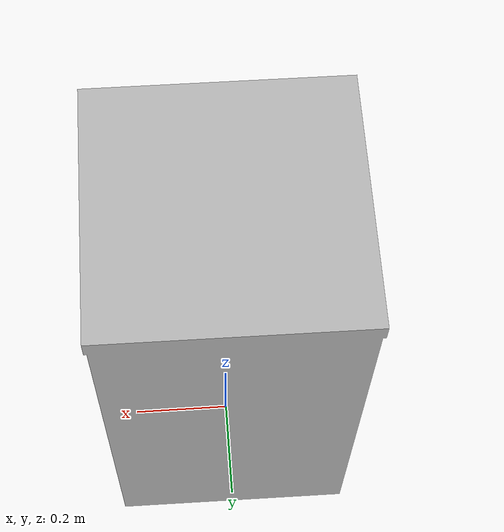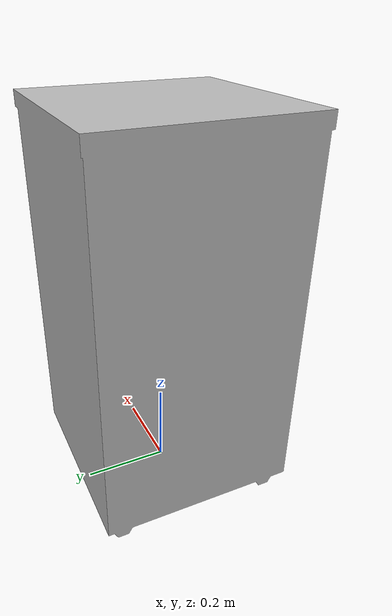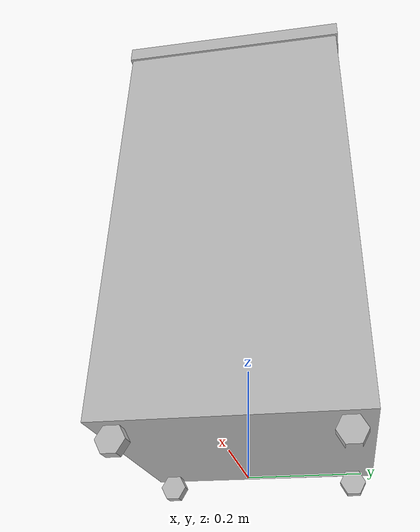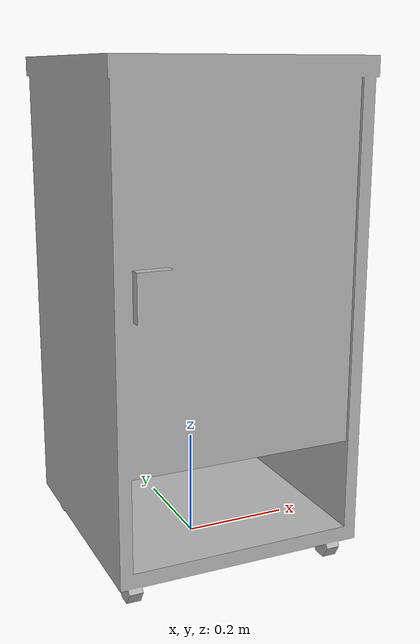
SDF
<?xml version='1.0' encoding='utf-8'?>
<sdf version="1.6">
  <model name="BedsideTable2">
   <static>true</static>
    <link name="body">
      <pose>0 0 0 0 0 0</pose>
      <visual name="visual">
        <geometry>
          <mesh>
            <uri>model://BedsideTable2/meshes/BedsideTable2.obj</uri>
          </mesh>
        </geometry>
      </visual>

      <collision name="collision">
        <geometry>
          <mesh>
            <uri>model://BedsideTable2/meshes/BedsideTable2.stl</uri>
          </mesh>
        </geometry>
      </collision>

    </link>
  </model>
</sdf>
